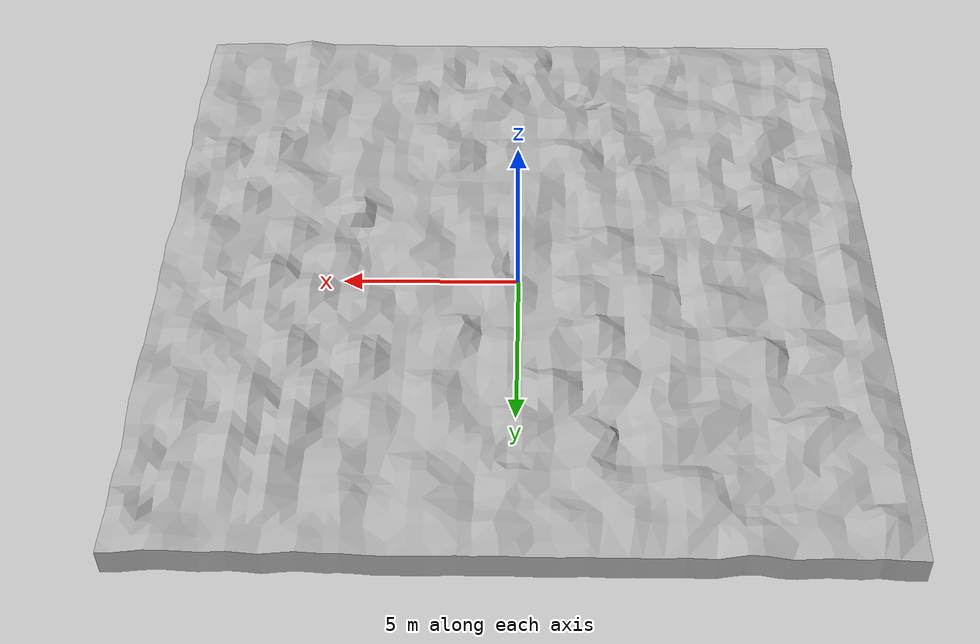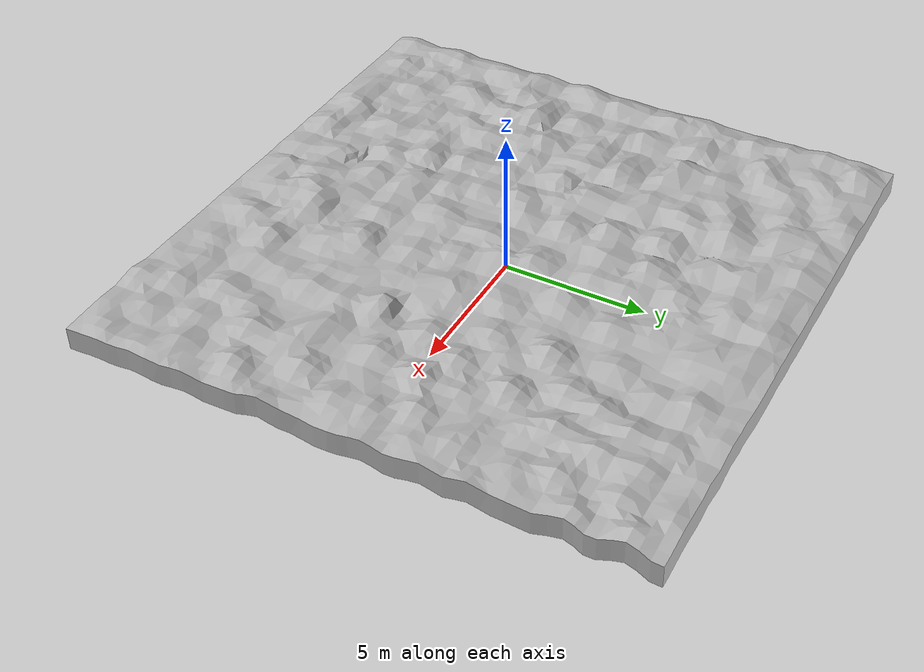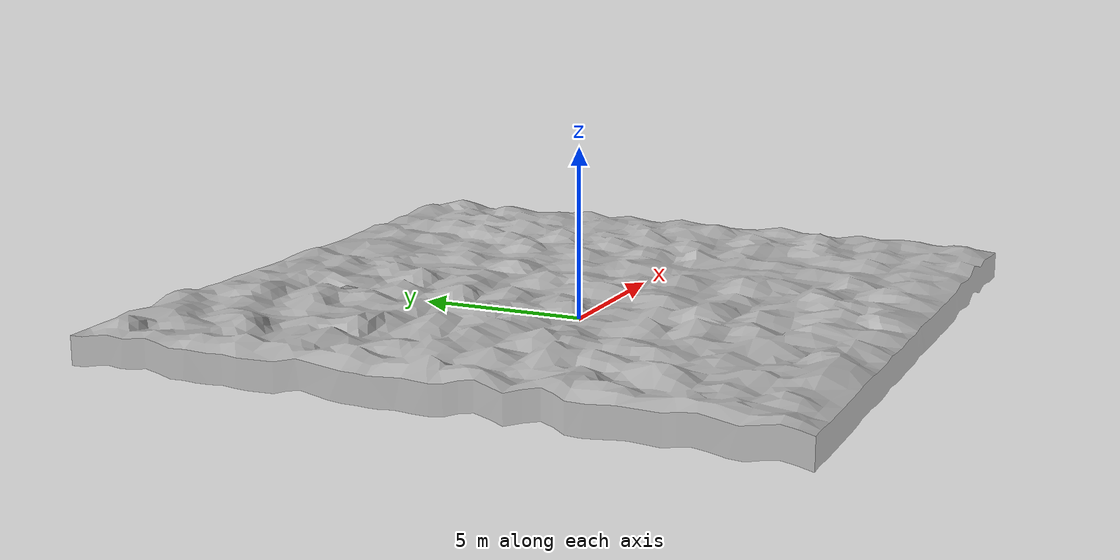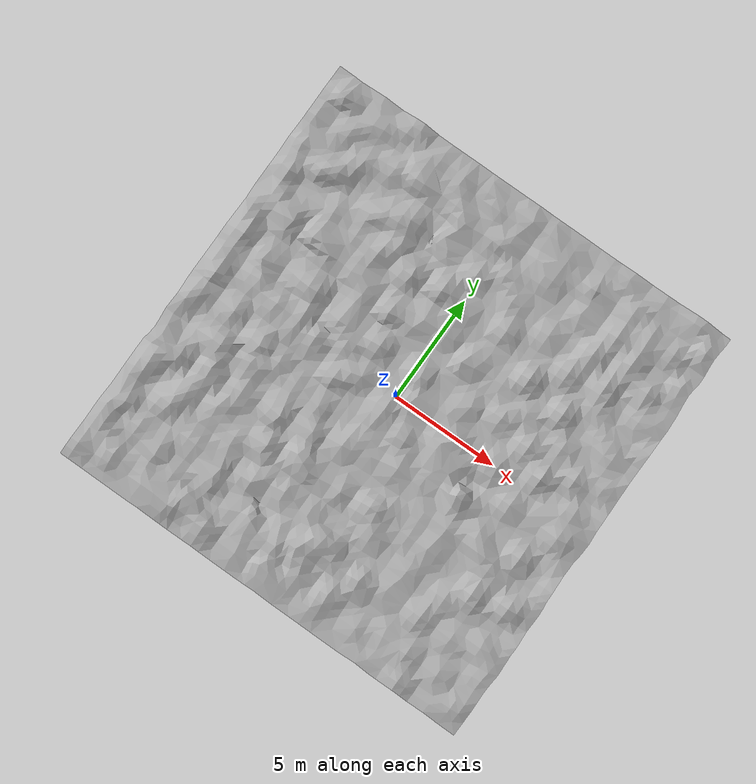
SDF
<?xml version="1.0" ?>
<sdf version="1.5">
  <world name="default">

    <!-- A global light source -->
    <include>
      <uri>model://sun</uri>
      <pose>0 0 0 0 0 0</pose>
    </include>
    <!-- A ground plane -->
    <include>
      <uri>model://rocky_surface</uri>
      <pose>-10 -10 0 0 0 0</pose>
    </include>

<scene>
  <sky>
    <clouds>
      <speed>50</speed>
    </clouds>
  </sky>
    <ambient>0 0 0 1.0</ambient>
    <shadows>0</shadows>
</scene>

  </world>
</sdf>

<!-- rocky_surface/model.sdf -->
<sdf version='1.6'>
  <model name="rocky_surface">
      <static>1</static>
      <link name='link'>
        <inertial>
          <mass>0.25</mass>
          <inertia>
            <ixx>0.00015</ixx>
            <ixy>0.000000</ixy>
            <ixz>0.000000</ixz>
            <iyy>0.00015</iyy>
            <iyz>0.000000</iyz>
            <izz>0.00015</izz>
          </inertia>
        </inertial>
        <collision name='collision'>
          <geometry>
            <mesh>
              <uri>model://rocky_surface/meshes/rocky.stl</uri>
              <scale>0.0001 0.0001 0.0001</scale>
            </mesh>
          </geometry>
          <surface>
            <friction>
              <ode>
                <mu>30.0</mu>
                <mu2>30.0</mu2>
              </ode>
            </friction>
            <contact>
              <ode>
                <kp>1000000.0</kp>
                <kd>100.0</kd>
                <max_vel>1.0</max_vel>
                <min_depth>0.002</min_depth>
              </ode>
            </contact>
          </surface>
        </collision>
        <visual name='visual'>
          <geometry>
            <mesh>
              <uri>model://rocky_surface/meshes/rocky.stl</uri>
              <scale>0.0001 0.0001 0.0001</scale>
            </mesh>
          </geometry>
        </visual>
        <velocity_decay>
          <linear>0.000000</linear>
          <angular>0.000000</angular>
        </velocity_decay>
        <self_collide>0</self_collide>
        <kinematic>0</kinematic>
        <gravity>1</gravity>
      </link>
  </model>
</sdf>
